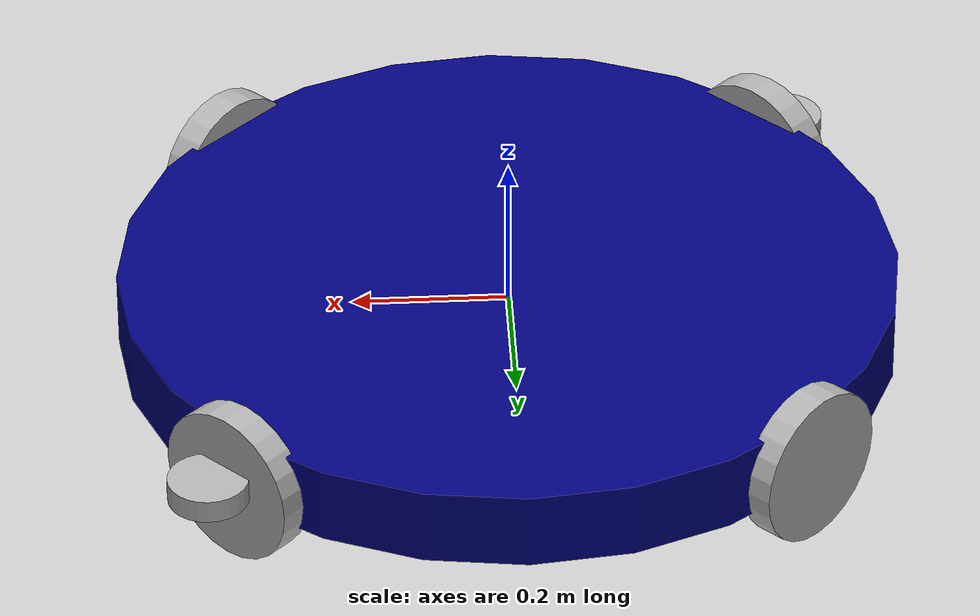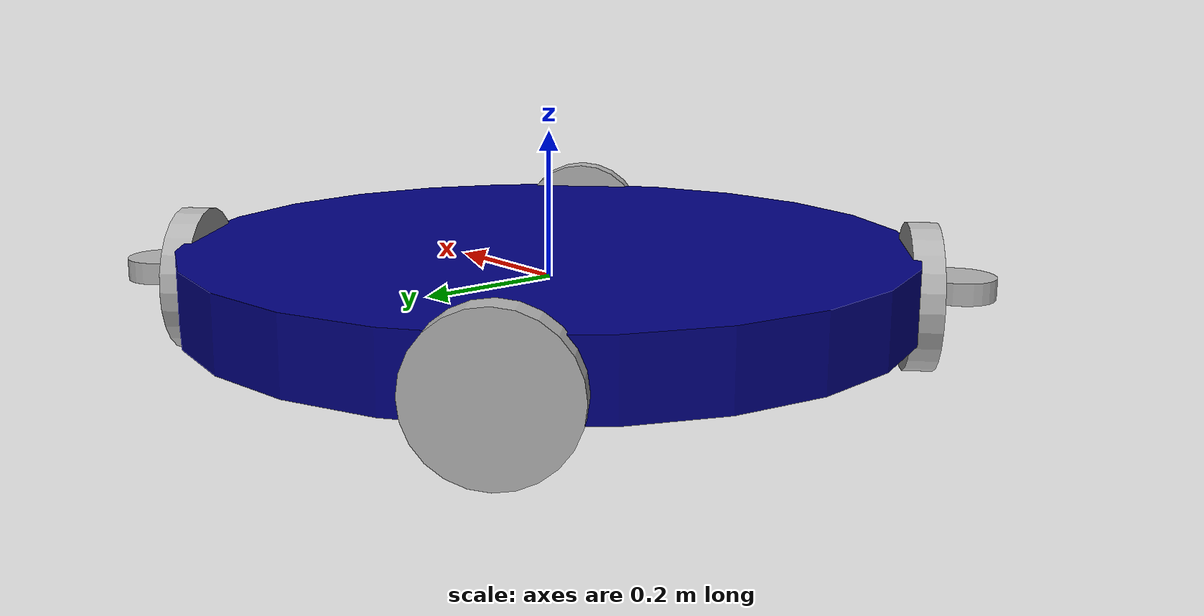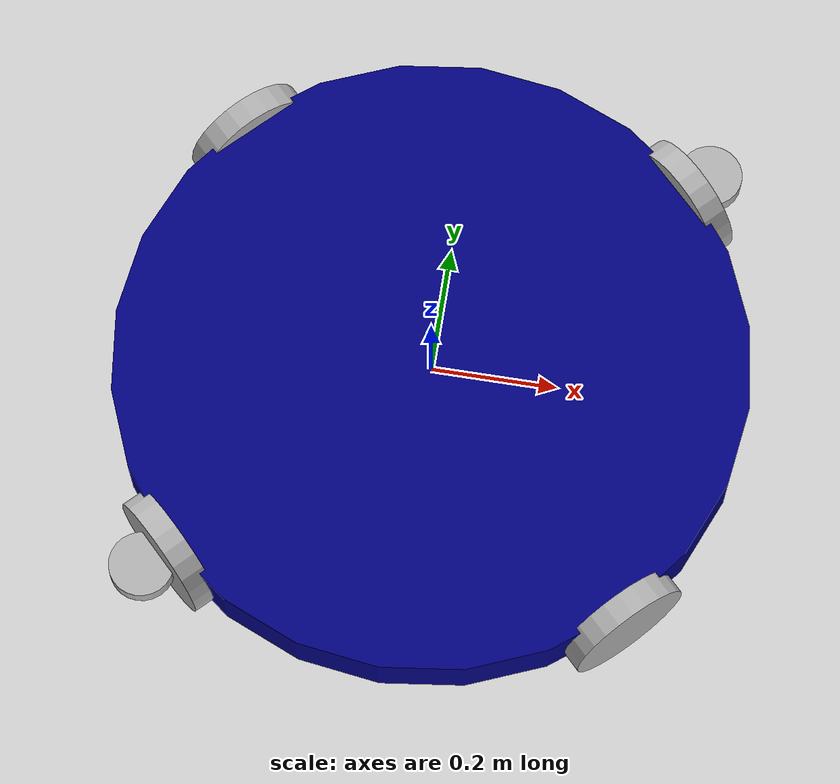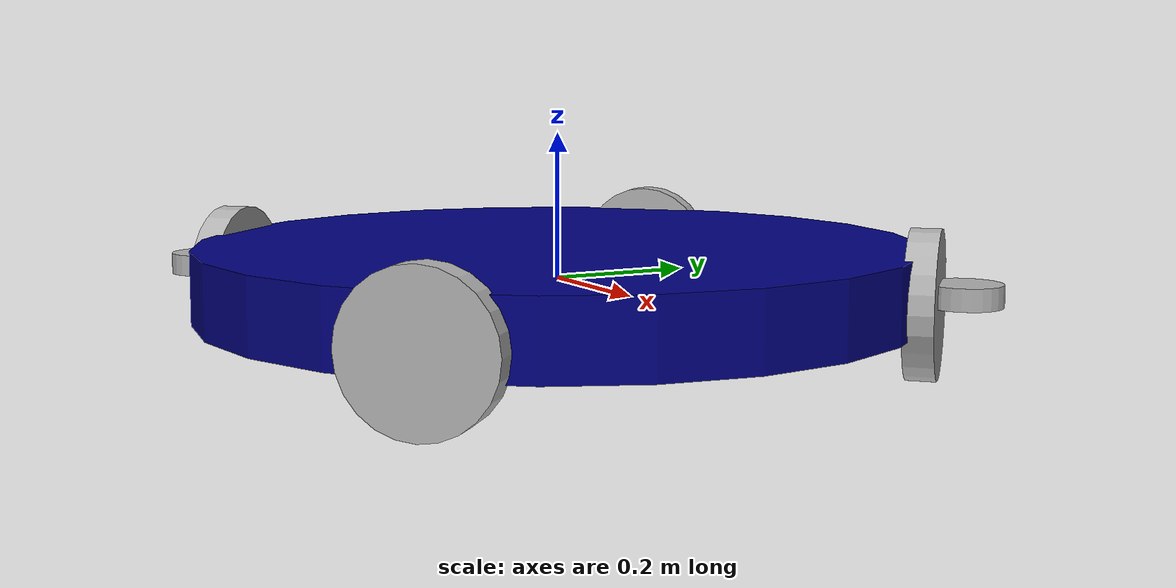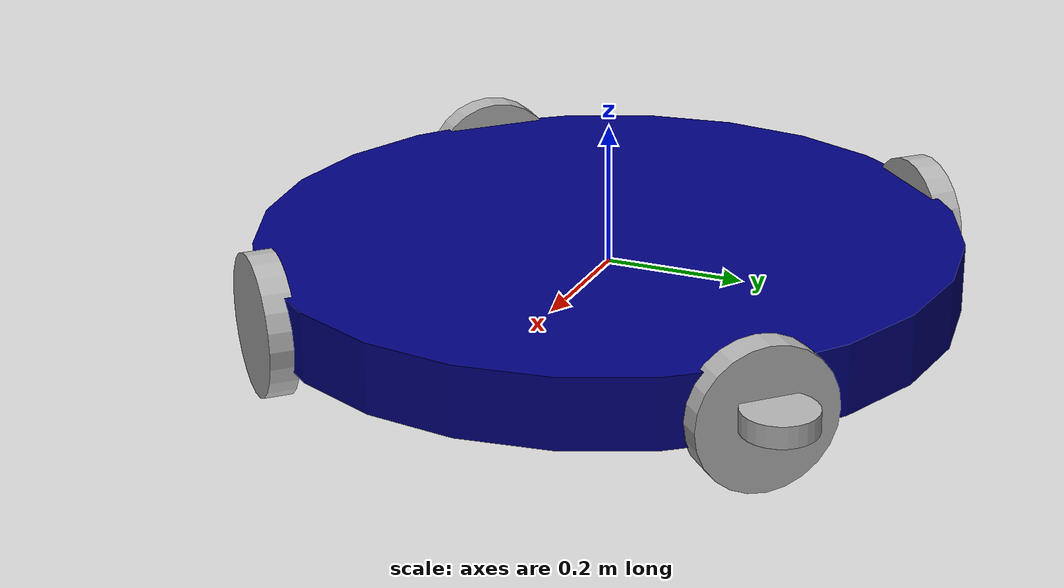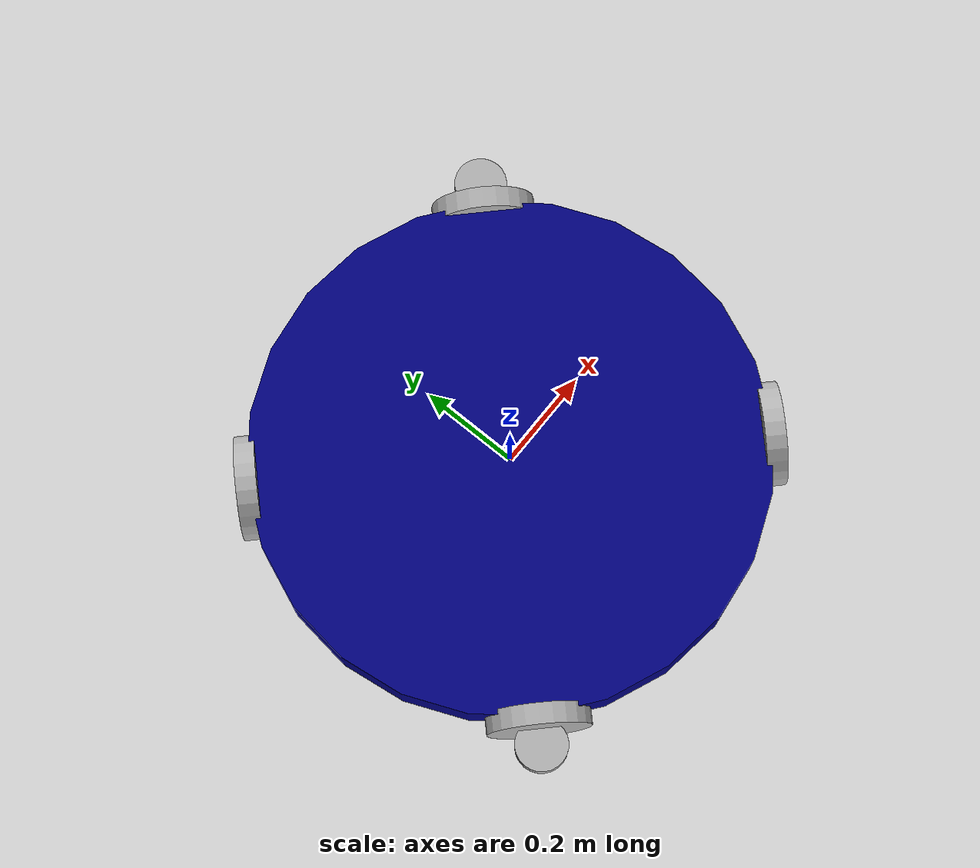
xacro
<?xml version="1.0"?>
<robot name="omuni_bot"
    xmlns:xacro="http://ros.org/wiki/xacro">

    <xacro:property name="base_radius" value="0.5"/>
    <xacro:property name="base_height" value="0.1"/>
    <xacro:property name="wheel_radius" value="0.1"/>
    <xacro:property name="wheel_width" value="0.04"/>
    <xacro:property name="wheel_zoff" value="0.015"/>

    <!-- 慣性計算マクロ -->
    <xacro:macro name="box_inertia" params="m w h d">
        <inertial>
            <origin xyz="0 0 0" rpy="${pi/2} 0 ${pi/2}"/>
            <mass value="${m}"/>
            <inertia ixx="${(m/12) * (h*h + d*d)}" ixy="0.0" ixz="0.0" iyy="${(m/12) * (w*w + d*d)}" iyz="0.0" izz="${(m/12) * (w*w + h*h)}"/>
        </inertial>
    </xacro:macro>

    <xacro:macro name="cylinder_inertia" params="m r h">
        <inertial>
            <origin xyz="0 0 0" rpy="${pi/2} 0 0" />
            <mass value="${m}"/>
            <inertia ixx="${(m/12) * (3*r*r + h*h)}" ixy = "0" ixz = "0" iyy="${(m/12) * (3*r*r + h*h)}" iyz = "0" izz="${(m/2) * (r*r)}"/>
        </inertial>
    </xacro:macro>

    <xacro:macro name="sphere_inertia" params="m r">
        <inertial>
            <mass value="${m}"/>
            <inertia ixx="${(2/5) * m * (r*r)}" ixy="0.0" ixz="0.0" iyy="${(2/5) * m * (r*r)}" iyz="0.0" izz="${(2/5) * m * (r*r)}"/>
        </inertial>
    </xacro:macro>

    <!-- 車輪マクロ -->
    <xacro:macro name="wheel" params="prefix x y r">
        <joint name="${prefix}_joint" type="continuous">
            <parent link="base_link"/>
            <child link="${prefix}_link"/>
            <origin xyz="${x} ${y} -${wheel_zoff}" rpy="0 0 ${r}"/>
            <axis xyz="0 1 0"/>
        </joint>
        <link name="${prefix}_link">
            <visual>
                <origin xyz="0 0 0" rpy="${pi/2.0} 0 0"/>
                <geometry>
                    <cylinder radius="${wheel_radius}" length="${wheel_width}"/>
                </geometry>
                <material name="gray">
                    <color rgba="0.7 0.7 0.7 1.0"/>
                </material>
            </visual>
            <collision>
                <origin xyz="0 0 0" rpy="${pi/2.0} 0 0"/>
                <geometry>
                    <cylinder radius="${wheel_radius}" length="${wheel_width}"/>
                </geometry>
            </collision>
            <xacro:cylinder_inertia m="0.5" r="${wheel_radius}" h="${wheel_width}"/>
        </link>
        <gazebo>
            <plugin filename="gz-sim-joint-controller-system" name="gz::sim::systems::JointController">
                <joint_name>${prefix}_joint</joint_name>
                <initial_velocity>0.0</initial_velocity>
                <topic>${prefix}_v</topic>
            </plugin>
        </gazebo>
    </xacro:macro>

    <!-- Lidarマクロ-->
    <xacro:macro name="lidar" params="prefix x y z r">
        <!-- 固定ジョイントで取り付け -->
        <joint name="${prefix}_lidar_joint" type="fixed">
            <parent link="base_link"/>
            <child link="${prefix}_lidar_link"/>
            <origin xyz="${x} ${y} ${z}" rpy="0 0 ${r}"/>
        </joint>

        <!-- LIDAR リンク -->
        <link name="${prefix}_lidar_link">
            <visual name="${prefix}_lidar_link_visual">
                <origin xyz="0 0 0" rpy="0 0 0"/>
                <geometry>
                    <cylinder radius="0.0508" length="0.03"/>
                </geometry>
                <material name="gray">
                    <color rgba="0.7 0.7 0.7 1.0"/>
                </material>
            </visual>

            <collision name="${prefix}_lidar_link_collision">
                <origin xyz="0 0 0" rpy="0 0 0"/>
                <geometry>
                    <cylinder radius="0.0508" length="0.03"/>
                </geometry>
            </collision>
        </link>
        <gazebo reference = "${prefix}_lidar_link">
            <sensor name="${prefix}_lidar" type="gpu_lidar">
                <always_on>true</always_on>
                <visualize>true</visualize>
                <update_rate>10</update_rate>
                <topic>${prefix}_scan</topic>
                <gz_frame_id>${prefix}_lidar_link</gz_frame_id>
                <ray>
                    <scan>
                        <horizontal>
                            <samples>90</samples>
                            <resolution>1.000000</resolution>
                            <min_angle>${-pi/2.0-0.3}</min_angle>
                            <max_angle>${pi/2.0+0.3}</max_angle>
                        </horizontal>
                    </scan>
                    <range>
                        <min>0.3</min>
                        <max>10.0</max>
                        <resolution>0.015000</resolution>
                    </range>
                    <noise>
                        <type>gaussian</type>
                        <mean>0.0</mean>
                        <stddev>0.01</stddev>
                    </noise>
                </ray>
            </sensor>
        </gazebo>
    </xacro:macro>

    <!-- ベースリンク -->
    <link name="base_link">
        <visual>
            <origin xyz="0 0 0" rpy="0 0 0"/>
            <geometry>
                <cylinder radius="${base_radius}" length="${base_height}"/>
            </geometry>
            <material name="blue">
                <color rgba="0.0 0.0 0.5 1.0"/>
            </material>
        </visual>
        <collision>
            <origin xyz="0 0 0" rpy="0 0 0"/>
            <geometry>
                <cylinder radius="${base_radius}" length="${base_height}"/>
            </geometry>
        </collision>
        <xacro:cylinder_inertia m="5.0" r="${base_radius}" h="${base_height}"/>
    </link>

    <!-- base_footprint -->
    <link name="base_footprint">
        <xacro:cylinder_inertia m="1.0" r="${base_radius}" h="${base_height}"/>
    </link>

    <joint name="base_joint" type="fixed">
        <parent link="base_link"/>
        <child link="base_footprint"/>
        <origin xyz="0 0 ${-(wheel_radius+wheel_zoff)}" rpy="0 0 0"/>
    </joint>

    <!-- 車輪-->
    <xacro:wheel prefix="whl_lf" x="${1.4142/2.0*base_radius}" y="${1.4142/2.0*base_radius}" r="${3.0*pi/4.0}" />
    <xacro:wheel prefix="whl_rf" x="${1.4142/2.0*base_radius}" y="-${1.4142/2.0*base_radius}" r="${1.0*pi/4.0}"/>
    <xacro:wheel prefix="whl_rb" x="-${1.4142/2.0*base_radius}" y="-${1.4142/2.0*base_radius}" r="-${1.0*pi/4.0}"/>
    <xacro:wheel prefix="whl_lb" x="-${1.4142/2.0*base_radius}" y="${1.4142/2.0*base_radius}" r="-${3.0*pi/4.0}"/>

    <!-- Lidar-->
    <xacro:lidar prefix="left" x="${1.4142/2.0*(base_radius+0.05)}" y="${1.4142/2.0*(base_radius+0.05)}" z="0.0" r="${pi/4.0 * 1.0}"/>
    <xacro:lidar prefix="right" x="-${1.4142/2.0*(base_radius+0.05)}" y="-${1.4142/2.0*(base_radius+0.05)}" z="0.0" r="${pi/4.0 * 5.0}"/>

</robot>
